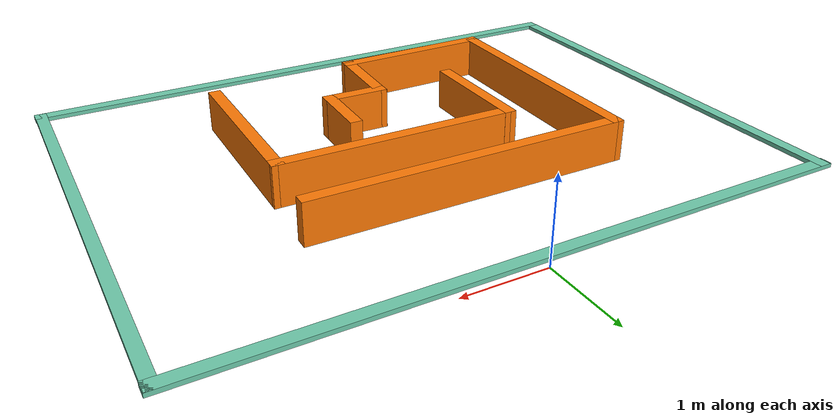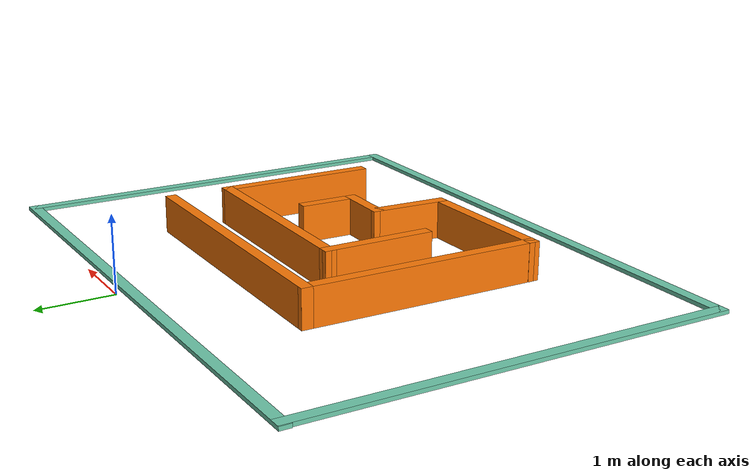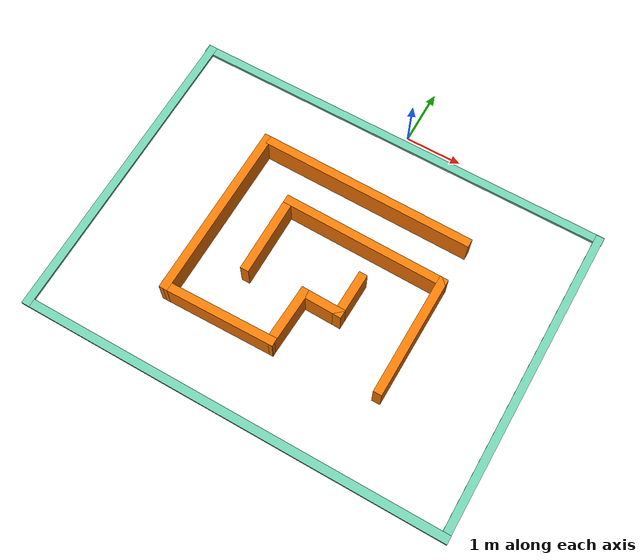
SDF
<?xml version='1.0'?>
<sdf version='1.7'>
  <model name='test2'>
    <pose>-0.136 -2.9175 0 0 -0 0</pose>
    <link name='Wall_12'>
      <collision name='Wall_12_Collision'>
        <geometry>
          <box>
            <size>2.98912 0.15 0.5</size>
          </box>
        </geometry>
        <pose>0 0 0.25 0 -0 0</pose>
      </collision>
      <visual name='Wall_12_Visual'>
        <pose>0 0 0.25 0 -0 0</pose>
        <geometry>
          <box>
            <size>2.98912 0.15 0.5</size>
          </box>
        </geometry>
        <material>
          <script>
            <uri>file://media/materials/scripts/gazebo.material</uri>
            <name>Gazebo/Grey</name>
          </script>
          <ambient>0.996078 0.47451 0.0196078 1</ambient>
        </material>
        <meta>
          <layer>0</layer>
        </meta>
      </visual>
      <pose>0.5115 0.626 0 0 -0 3.12645</pose>
    </link>
    <link name='Wall_13'>
      <collision name='Wall_13_Collision'>
        <geometry>
          <box>
            <size>1.5 0.15 0.5</size>
          </box>
        </geometry>
        <pose>0 0 0.25 0 -0 0</pose>
      </collision>
      <visual name='Wall_13_Visual'>
        <pose>0 0 0.25 0 -0 0</pose>
        <geometry>
          <box>
            <size>1.5 0.15 0.5</size>
          </box>
        </geometry>
        <material>
          <script>
            <uri>file://media/materials/scripts/gazebo.material</uri>
            <name>Gazebo/Grey</name>
          </script>
          <ambient>0.996078 0.47451 0.0196078 1</ambient>
        </material>
        <meta>
          <layer>0</layer>
        </meta>
      </visual>
      <pose>-0.908 -0.0275 0 0 -0 -1.5708</pose>
    </link>
    <link name='Wall_16'>
      <collision name='Wall_16_Collision'>
        <geometry>
          <box>
            <size>2.07151 0.15 0.5</size>
          </box>
        </geometry>
        <pose>0 0 0.25 0 -0 0</pose>
      </collision>
      <visual name='Wall_16_Visual'>
        <pose>0 0 0.25 0 -0 0</pose>
        <geometry>
          <box>
            <size>2.07151 0.15 0.5</size>
          </box>
        </geometry>
        <material>
          <script>
            <uri>file://media/materials/scripts/gazebo.material</uri>
            <name>Gazebo/Grey</name>
          </script>
          <ambient>0.996078 0.47451 0.0196078 1</ambient>
        </material>
        <meta>
          <layer>0</layer>
        </meta>
      </visual>
      <pose>-0.8935 -1.6075 0 0 -0 0.015616</pose>
    </link>
    <link name='Wall_2'>
      <collision name='Wall_2_Collision'>
        <geometry>
          <box>
            <size>2.2 0.15 0.5</size>
          </box>
        </geometry>
        <pose>0 0 0.25 0 -0 0</pose>
      </collision>
      <visual name='Wall_2_Visual'>
        <pose>0 0 0.25 0 -0 0</pose>
        <geometry>
          <box>
            <size>2.2 0.15 0.5</size>
          </box>
        </geometry>
        <material>
          <script>
            <uri>file://media/materials/scripts/gazebo.material</uri>
            <name>Gazebo/Grey</name>
          </script>
          <ambient>0.996078 0.47451 0.0196078 1</ambient>
        </material>
        <meta>
          <layer>0</layer>
        </meta>
      </visual>
      <pose>1.9235 -0.4205 0 0 -0 1.56348</pose>
    </link>
    <link name='Wall_24'>
      <collision name='Wall_24_Collision'>
        <geometry>
          <box>
            <size>1.10111 0.15 0.5</size>
          </box>
        </geometry>
        <pose>0 0 0.25 0 -0 0</pose>
      </collision>
      <visual name='Wall_24_Visual'>
        <pose>0 0 0.25 0 -0 0</pose>
        <geometry>
          <box>
            <size>1.10111 0.15 0.5</size>
          </box>
        </geometry>
        <material>
          <script>
            <uri>file://media/materials/scripts/gazebo.material</uri>
            <name>Gazebo/Grey</name>
          </script>
          <ambient>0.996078 0.47451 0.0196078 1</ambient>
        </material>
        <meta>
          <layer>0</layer>
        </meta>
      </visual>
      <pose>0.09 -1.1175 0 0 -0 1.52241</pose>
    </link>
    <link name='Wall_25'>
      <collision name='Wall_25_Collision'>
        <geometry>
          <box>
            <size>0.795805 0.15 0.5</size>
          </box>
        </geometry>
        <pose>0 0 0.25 0 -0 0</pose>
      </collision>
      <visual name='Wall_25_Visual'>
        <pose>0 0 0.25 0 -0 0</pose>
        <geometry>
          <box>
            <size>0.795805 0.15 0.5</size>
          </box>
        </geometry>
        <material>
          <script>
            <uri>file://media/materials/scripts/gazebo.material</uri>
            <name>Gazebo/Grey</name>
          </script>
          <ambient>0.996078 0.47451 0.0196078 1</ambient>
        </material>
        <meta>
          <layer>0</layer>
        </meta>
      </visual>
      <pose>0.4355 -0.65 0 0 -0 -0.023252</pose>
    </link>
    <link name='Wall_27'>
      <collision name='Wall_27_Collision'>
        <geometry>
          <box>
            <size>0.84142 0.15 0.5</size>
          </box>
        </geometry>
        <pose>0 0 0.25 0 -0 0</pose>
      </collision>
      <visual name='Wall_27_Visual'>
        <pose>0 0 0.25 0 -0 0</pose>
        <geometry>
          <box>
            <size>0.84142 0.15 0.5</size>
          </box>
        </geometry>
        <material>
          <script>
            <uri>file://media/materials/scripts/gazebo.material</uri>
            <name>Gazebo/Grey</name>
          </script>
          <ambient>0.996078 0.47451 0.0196078 1</ambient>
        </material>
        <meta>
          <layer>0</layer>
        </meta>
      </visual>
      <pose>0.766 -0.312 0 0 -0 1.54765</pose>
    </link>
    <link name='Wall_6'>
      <collision name='Wall_6_Collision'>
        <geometry>
          <box>
            <size>3.91491 0.15 0.5</size>
          </box>
        </geometry>
        <pose>0 0 0.25 0 -0 0</pose>
      </collision>
      <visual name='Wall_6_Visual'>
        <pose>0 0 0.25 0 -0 0</pose>
        <geometry>
          <box>
            <size>3.91491 0.15 0.5</size>
          </box>
        </geometry>
        <material>
          <script>
            <uri>file://media/materials/scripts/gazebo.material</uri>
            <name>Gazebo/Grey</name>
          </script>
          <ambient>0.996078 0.47451 0.0196078 1</ambient>
        </material>
        <meta>
          <layer>0</layer>
        </meta>
      </visual>
      <pose>0.059 1.442 0 0 -0 3.13336</pose>
    </link>
    <link name='Wall_7'>
      <collision name='Wall_7_Collision'>
        <geometry>
          <box>
            <size>3.23016 0.15 0.5</size>
          </box>
        </geometry>
        <pose>0 0 0.25 0 -0 0</pose>
      </collision>
      <visual name='Wall_7_Visual'>
        <pose>0 0 0.25 0 -0 0</pose>
        <geometry>
          <box>
            <size>3.23016 0.15 0.5</size>
          </box>
        </geometry>
        <material>
          <script>
            <uri>file://media/materials/scripts/gazebo.material</uri>
            <name>Gazebo/Grey</name>
          </script>
          <ambient>0.996078 0.47451 0.0196078 1</ambient>
        </material>
        <meta>
          <layer>0</layer>
        </meta>
      </visual>
      <pose>-1.8385 -0.0825 0 0 -0 -1.58086</pose>
    </link>
    <link name='Wall_93'>
      <collision name='Wall_93_Collision'>
        <geometry>
          <box>
            <size>5.75 0.15 0.05</size>
          </box>
        </geometry>
        <pose>0 0 0.025 0 -0 0</pose>
      </collision>
      <visual name='Wall_93_Visual'>
        <pose>0 0 0.025 0 -0 0</pose>
        <geometry>
          <box>
            <size>5.75 0.15 0.05</size>
          </box>
        </geometry>
        <material>
          <script>
            <uri>file://media/materials/scripts/gazebo.material</uri>
            <name>Gazebo/Grey</name>
          </script>
          <ambient>0.435294 0.796078 0.67451 1</ambient>
        </material>
        <meta>
          <layer>0</layer>
        </meta>
      </visual>
      <pose>-3.785 -0.0425 0 0 -0 -1.5708</pose>
    </link>
    <link name='Wall_94'>
      <collision name='Wall_94_Collision'>
        <geometry>
          <box>
            <size>7.735 0.15 0.05</size>
          </box>
        </geometry>
        <pose>0 0 0.025 0 -0 0</pose>
      </collision>
      <visual name='Wall_94_Visual'>
        <pose>0 0 0.025 0 -0 0</pose>
        <geometry>
          <box>
            <size>7.735 0.15 0.05</size>
          </box>
        </geometry>
        <material>
          <script>
            <uri>file://media/materials/scripts/gazebo.material</uri>
            <name>Gazebo/Grey</name>
          </script>
          <ambient>0.435294 0.796078 0.67451 1</ambient>
        </material>
        <meta>
          <layer>0</layer>
        </meta>
      </visual>
      <pose>0.0075 -2.8425 0 0 -0 0</pose>
    </link>
    <link name='Wall_95'>
      <collision name='Wall_95_Collision'>
        <geometry>
          <box>
            <size>5.74 0.14 0.05</size>
          </box>
        </geometry>
        <pose>0 0 0.025 0 -0 0</pose>
      </collision>
      <visual name='Wall_95_Visual'>
        <pose>0 0 0.025 0 -0 0</pose>
        <geometry>
          <box>
            <size>5.74 0.14 0.05</size>
          </box>
        </geometry>
        <material>
          <script>
            <uri>file://media/materials/scripts/gazebo.material</uri>
            <name>Gazebo/Grey</name>
          </script>
          <ambient>0.435294 0.796078 0.67451 1</ambient>
        </material>
        <meta>
          <layer>0</layer>
        </meta>
      </visual>
      <pose>3.8 -0.0425 0 0 -0 1.5708</pose>
    </link>
    <link name='Wall_96'>
      <collision name='Wall_96_Collision'>
        <geometry>
          <box>
            <size>7.75 0.15 0.05</size>
          </box>
        </geometry>
        <pose>0 0 0.025 0 -0 0</pose>
      </collision>
      <visual name='Wall_96_Visual'>
        <pose>0 0 0.025 0 -0 0</pose>
        <geometry>
          <box>
            <size>7.75 0.15 0.05</size>
          </box>
        </geometry>
        <material>
          <script>
            <uri>file://media/materials/scripts/gazebo.material</uri>
            <name>Gazebo/Grey</name>
          </script>
          <ambient>0.435294 0.796078 0.67451 1</ambient>
        </material>
        <meta>
          <layer>0</layer>
        </meta>
      </visual>
      <pose>0 2.7575 0 0 -0 3.14159</pose>
    </link>
    <static>1</static>
  </model>
</sdf>
